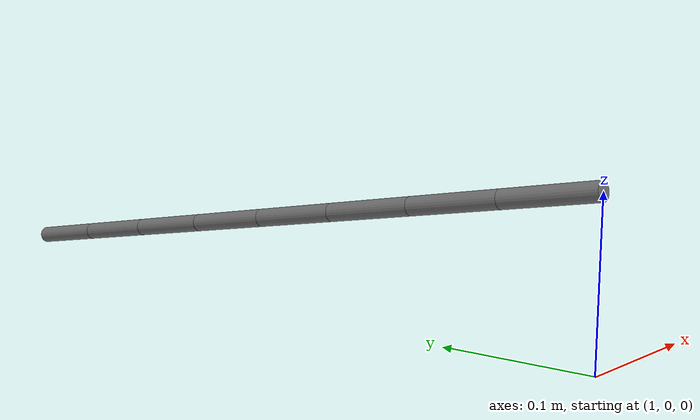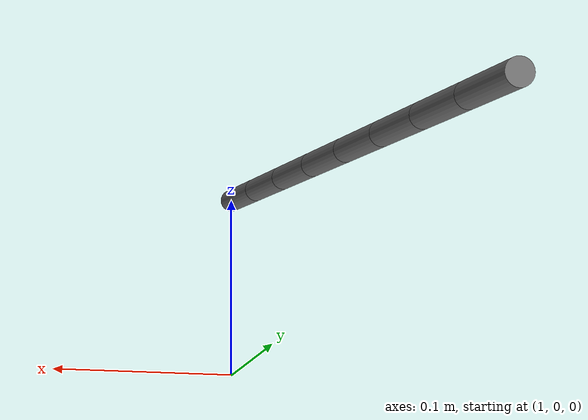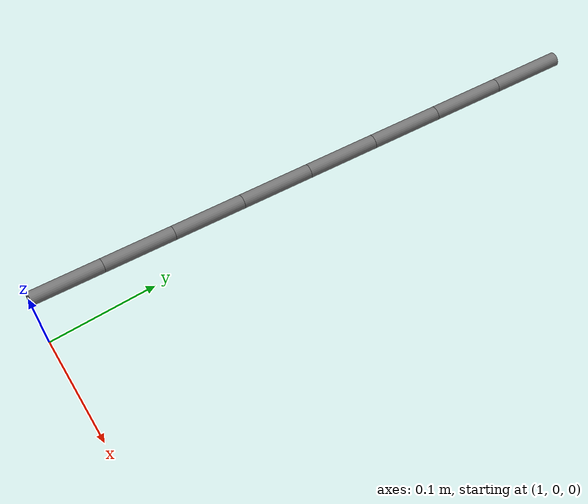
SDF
<?xml version="1.0"?>
<sdf version="1.7">
  <model name="cable_1">
    <self_collide>false</self_collide>

    <!-- Segment 0 -->
    <link name="seg_0">
      <pose>1.000000 0.031250 0.095625 0.000000 1.709892 1.570796</pose>
      <inertial>
        <mass>0.006</mass>
        <inertia>
          <ixx>0.000002045</ixx>
          <iyy>0.000002045</iyy>
          <izz>0.000000108</izz>
          <ixy>0</ixy><ixz>0</ixz><iyz>0</iyz>
        </inertia>
      </inertial>
      <collision name="col">
        <geometry>
          <cylinder><radius>0.006</radius><length>0.063110</length></cylinder>
        </geometry>
      </collision>
      <visual name="vis">
        <geometry>
          <cylinder><radius>0.006</radius><length>0.063110</length></cylinder>
        </geometry>
        <material>
          <ambient>0.20 0.20 0.20 1</ambient>
          <diffuse>0.45 0.45 0.45 1</diffuse>
          <specular>0.05 0.05 0.05 1</specular>
        </material>
      </visual>
    </link>

    <!-- Segment 1 -->
    <link name="seg_1">
      <pose>1.000000 0.093750 0.086875 0.000000 1.709892 1.570796</pose>
      <inertial>
        <mass>0.006</mass>
        <inertia>
          <ixx>0.000002045</ixx>
          <iyy>0.000002045</iyy>
          <izz>0.000000108</izz>
          <ixy>0</ixy><ixz>0</ixz><iyz>0</iyz>
        </inertia>
      </inertial>
      <collision name="col">
        <geometry>
          <cylinder><radius>0.006</radius><length>0.063110</length></cylinder>
        </geometry>
      </collision>
      <visual name="vis">
        <geometry>
          <cylinder><radius>0.006</radius><length>0.063110</length></cylinder>
        </geometry>
        <material>
          <ambient>0.20 0.20 0.20 1</ambient>
          <diffuse>0.45 0.45 0.45 1</diffuse>
          <specular>0.05 0.05 0.05 1</specular>
        </material>
      </visual>
    </link>

    <!-- Segment 2 -->
    <link name="seg_2">
      <pose>1.000000 0.156250 0.078125 0.000000 1.709892 1.570796</pose>
      <inertial>
        <mass>0.006</mass>
        <inertia>
          <ixx>0.000002045</ixx>
          <iyy>0.000002045</iyy>
          <izz>0.000000108</izz>
          <ixy>0</ixy><ixz>0</ixz><iyz>0</iyz>
        </inertia>
      </inertial>
      <collision name="col">
        <geometry>
          <cylinder><radius>0.006</radius><length>0.063110</length></cylinder>
        </geometry>
      </collision>
      <visual name="vis">
        <geometry>
          <cylinder><radius>0.006</radius><length>0.063110</length></cylinder>
        </geometry>
        <material>
          <ambient>0.20 0.20 0.20 1</ambient>
          <diffuse>0.45 0.45 0.45 1</diffuse>
          <specular>0.05 0.05 0.05 1</specular>
        </material>
      </visual>
    </link>

    <!-- Segment 3 -->
    <link name="seg_3">
      <pose>1.000000 0.218750 0.069375 0.000000 1.709892 1.570796</pose>
      <inertial>
        <mass>0.006</mass>
        <inertia>
          <ixx>0.000002045</ixx>
          <iyy>0.000002045</iyy>
          <izz>0.000000108</izz>
          <ixy>0</ixy><ixz>0</ixz><iyz>0</iyz>
        </inertia>
      </inertial>
      <collision name="col">
        <geometry>
          <cylinder><radius>0.006</radius><length>0.063110</length></cylinder>
        </geometry>
      </collision>
      <visual name="vis">
        <geometry>
          <cylinder><radius>0.006</radius><length>0.063110</length></cylinder>
        </geometry>
        <material>
          <ambient>0.20 0.20 0.20 1</ambient>
          <diffuse>0.45 0.45 0.45 1</diffuse>
          <specular>0.05 0.05 0.05 1</specular>
        </material>
      </visual>
    </link>

    <!-- Segment 4 -->
    <link name="seg_4">
      <pose>1.000000 0.281250 0.060625 0.000000 1.709892 1.570796</pose>
      <inertial>
        <mass>0.006</mass>
        <inertia>
          <ixx>0.000002045</ixx>
          <iyy>0.000002045</iyy>
          <izz>0.000000108</izz>
          <ixy>0</ixy><ixz>0</ixz><iyz>0</iyz>
        </inertia>
      </inertial>
      <collision name="col">
        <geometry>
          <cylinder><radius>0.006</radius><length>0.063110</length></cylinder>
        </geometry>
      </collision>
      <visual name="vis">
        <geometry>
          <cylinder><radius>0.006</radius><length>0.063110</length></cylinder>
        </geometry>
        <material>
          <ambient>0.20 0.20 0.20 1</ambient>
          <diffuse>0.45 0.45 0.45 1</diffuse>
          <specular>0.05 0.05 0.05 1</specular>
        </material>
      </visual>
    </link>

    <!-- Segment 5 -->
    <link name="seg_5">
      <pose>1.000000 0.343750 0.051875 0.000000 1.709892 1.570796</pose>
      <inertial>
        <mass>0.006</mass>
        <inertia>
          <ixx>0.000002045</ixx>
          <iyy>0.000002045</iyy>
          <izz>0.000000108</izz>
          <ixy>0</ixy><ixz>0</ixz><iyz>0</iyz>
        </inertia>
      </inertial>
      <collision name="col">
        <geometry>
          <cylinder><radius>0.006</radius><length>0.063110</length></cylinder>
        </geometry>
      </collision>
      <visual name="vis">
        <geometry>
          <cylinder><radius>0.006</radius><length>0.063110</length></cylinder>
        </geometry>
        <material>
          <ambient>0.20 0.20 0.20 1</ambient>
          <diffuse>0.45 0.45 0.45 1</diffuse>
          <specular>0.05 0.05 0.05 1</specular>
        </material>
      </visual>
    </link>

    <!-- Segment 6 -->
    <link name="seg_6">
      <pose>1.000000 0.406250 0.043125 0.000000 1.709892 1.570796</pose>
      <inertial>
        <mass>0.006</mass>
        <inertia>
          <ixx>0.000002045</ixx>
          <iyy>0.000002045</iyy>
          <izz>0.000000108</izz>
          <ixy>0</ixy><ixz>0</ixz><iyz>0</iyz>
        </inertia>
      </inertial>
      <collision name="col">
        <geometry>
          <cylinder><radius>0.006</radius><length>0.063110</length></cylinder>
        </geometry>
      </collision>
      <visual name="vis">
        <geometry>
          <cylinder><radius>0.006</radius><length>0.063110</length></cylinder>
        </geometry>
        <material>
          <ambient>0.20 0.20 0.20 1</ambient>
          <diffuse>0.45 0.45 0.45 1</diffuse>
          <specular>0.05 0.05 0.05 1</specular>
        </material>
      </visual>
    </link>

    <!-- Segment 7 -->
    <link name="seg_7">
      <pose>1.000000 0.468750 0.034375 0.000000 1.709892 1.570796</pose>
      <inertial>
        <mass>0.006</mass>
        <inertia>
          <ixx>0.000002045</ixx>
          <iyy>0.000002045</iyy>
          <izz>0.000000108</izz>
          <ixy>0</ixy><ixz>0</ixz><iyz>0</iyz>
        </inertia>
      </inertial>
      <collision name="col">
        <geometry>
          <cylinder><radius>0.006</radius><length>0.063110</length></cylinder>
        </geometry>
      </collision>
      <visual name="vis">
        <geometry>
          <cylinder><radius>0.006</radius><length>0.063110</length></cylinder>
        </geometry>
        <material>
          <ambient>0.20 0.20 0.20 1</ambient>
          <diffuse>0.45 0.45 0.45 1</diffuse>
          <specular>0.05 0.05 0.05 1</specular>
        </material>
      </visual>
    </link>

    <joint name="j_0_1" type="ball">
      <!-- joint at (1.0000, 0.0625, 0.0912) in world frame -->
      <pose relative_to="__model__">1.000000 0.062500 0.091250 0 0 0</pose>
      <parent>seg_0</parent>
      <child>seg_1</child>
    </joint>

    <joint name="j_1_2" type="ball">
      <!-- joint at (1.0000, 0.1250, 0.0825) in world frame -->
      <pose relative_to="__model__">1.000000 0.125000 0.082500 0 0 0</pose>
      <parent>seg_1</parent>
      <child>seg_2</child>
    </joint>

    <joint name="j_2_3" type="ball">
      <!-- joint at (1.0000, 0.1875, 0.0738) in world frame -->
      <pose relative_to="__model__">1.000000 0.187500 0.073750 0 0 0</pose>
      <parent>seg_2</parent>
      <child>seg_3</child>
    </joint>

    <joint name="j_3_4" type="ball">
      <!-- joint at (1.0000, 0.2500, 0.0650) in world frame -->
      <pose relative_to="__model__">1.000000 0.250000 0.065000 0 0 0</pose>
      <parent>seg_3</parent>
      <child>seg_4</child>
    </joint>

    <joint name="j_4_5" type="ball">
      <!-- joint at (1.0000, 0.3125, 0.0563) in world frame -->
      <pose relative_to="__model__">1.000000 0.312500 0.056250 0 0 0</pose>
      <parent>seg_4</parent>
      <child>seg_5</child>
    </joint>

    <joint name="j_5_6" type="ball">
      <!-- joint at (1.0000, 0.3750, 0.0475) in world frame -->
      <pose relative_to="__model__">1.000000 0.375000 0.047500 0 0 0</pose>
      <parent>seg_5</parent>
      <child>seg_6</child>
    </joint>

    <joint name="j_6_7" type="ball">
      <!-- joint at (1.0000, 0.4375, 0.0387) in world frame -->
      <pose relative_to="__model__">1.000000 0.437500 0.038750 0 0 0</pose>
      <parent>seg_6</parent>
      <child>seg_7</child>
    </joint>

  </model>
</sdf>
